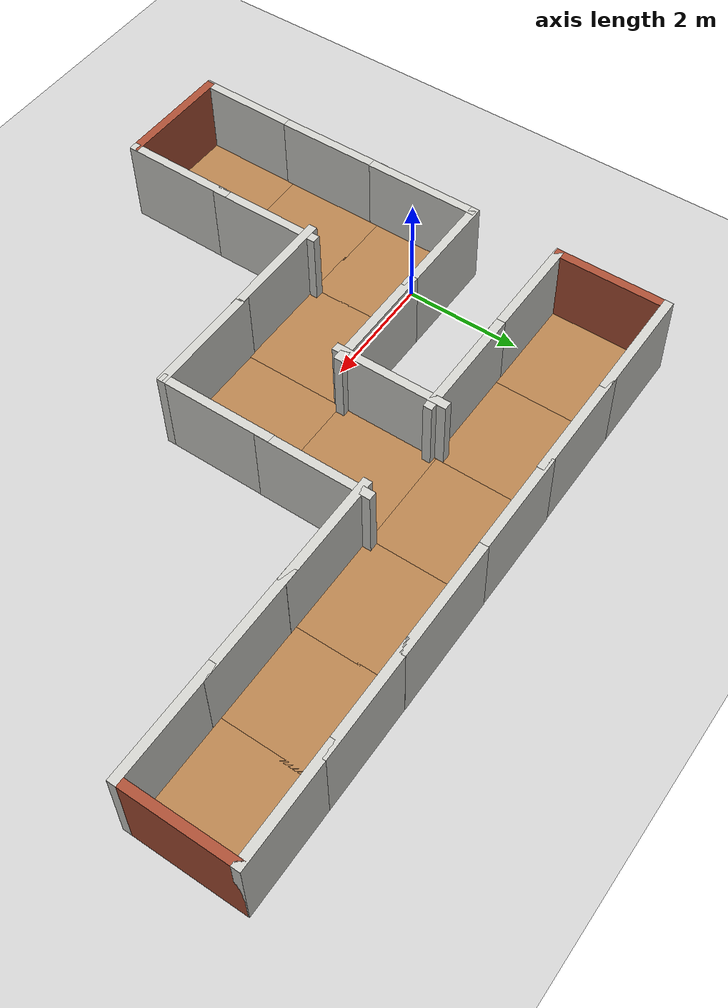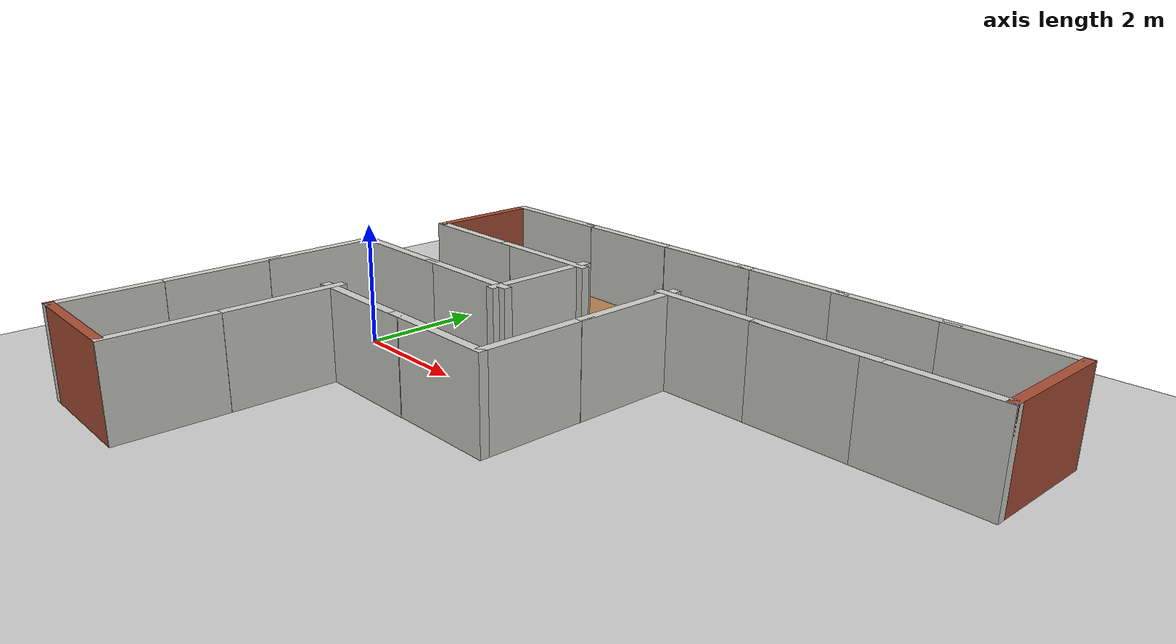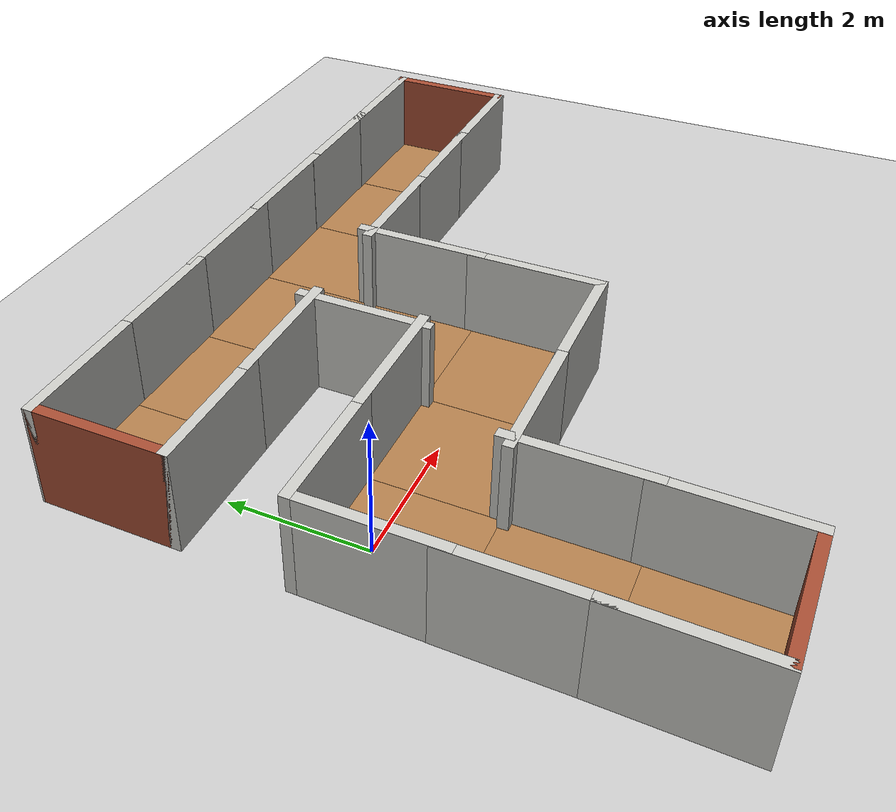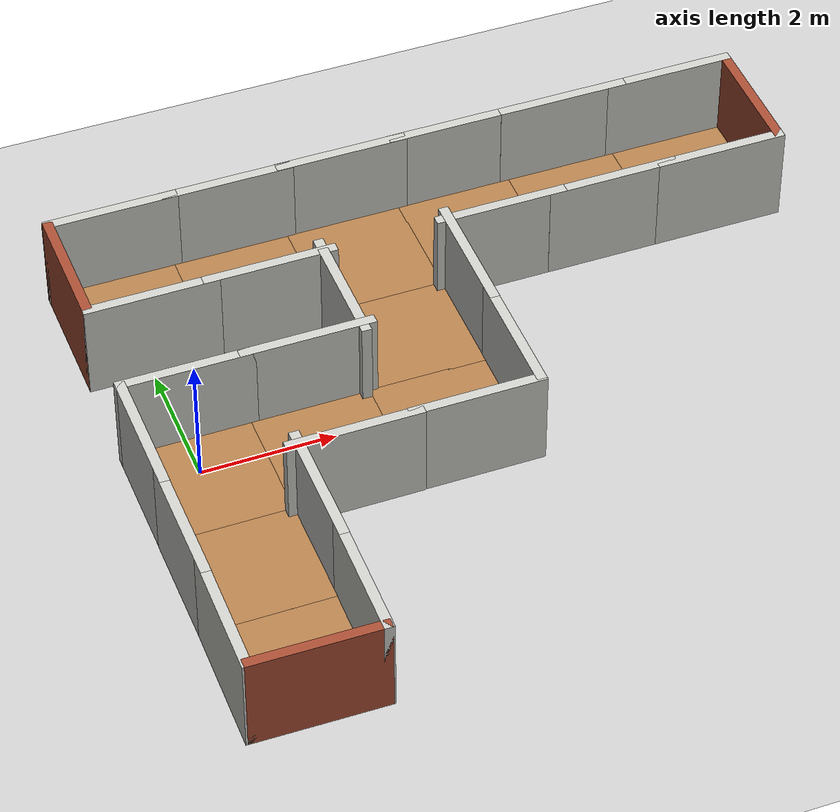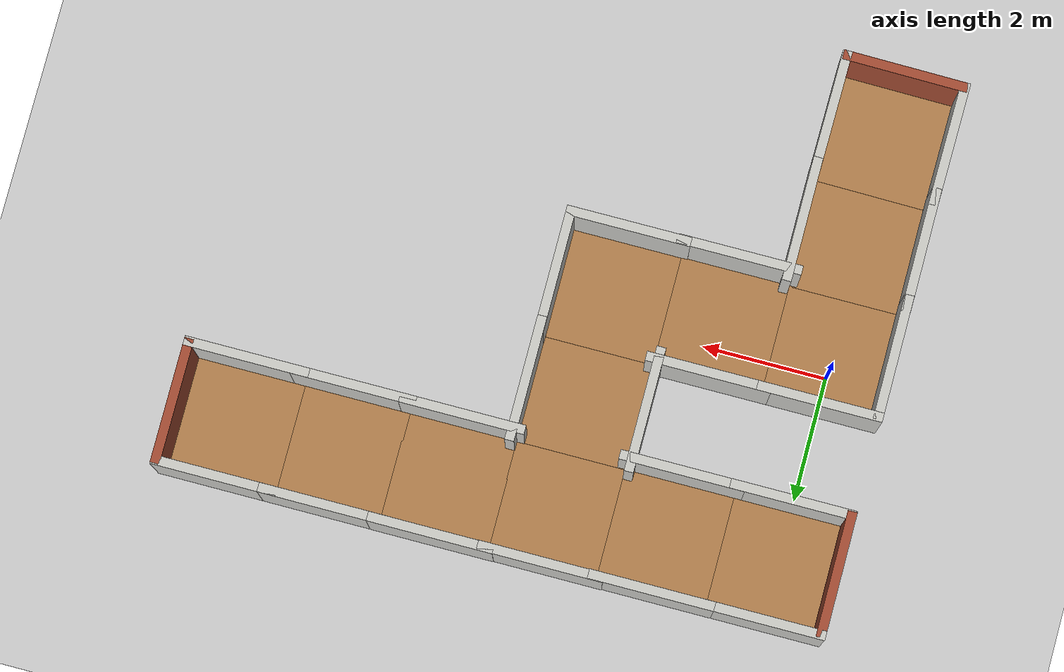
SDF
<sdf version="1.6">
 <world name="default">
  <light name="sun" type="directional">
   <pose>0 0 10 0 -0 0</pose>
   <diffuse>0.8 0.8 0.8 1</diffuse>
   <specular>0.1 0.1 0.1 1</specular>
   <attenuation>
    <range>1000</range>
    <constant>0.9</constant>
    <linear>0.01</linear>
    <quadratic>0.001</quadratic>
   </attenuation>
   <direction>-0.5 0.5 -1</direction>
  </light>
  <model name="ground_plane">
   <static>1</static>
   <link name="link">
    <collision name="collision">
     <geometry><plane><normal>0 0 1</normal><size>100 100</size></plane></geometry>
     <surface><friction><ode><mu>100</mu><mu2>50</mu2></ode></friction></surface>
    </collision>
    <visual name="visual">
     <cast_shadows>0</cast_shadows>
     <geometry><plane><normal>0 0 1</normal><size>100 100</size></plane></geometry>
     <material>
      <script><uri>file://media/materials/scripts/gazebo.material</uri><name>Gazebo/Grey</name></script>
     </material>
    </visual>
   </link>
  </model>
  <gravity>0 0 -9.8</gravity>
  <magnetic_field>6e-06 2.3e-05 -4.2e-05</magnetic_field>
  <atmosphere type="adiabatic"/>
  <physics name="default_physics" default="0" type="ode">
   <max_step_size>0.001</max_step_size>
   <real_time_factor>1</real_time_factor>
   <real_time_update_rate>1000</real_time_update_rate>
  </physics>
  <scene><ambient>0.4 0.4 0.4 1</ambient><background>0.7 0.7 0.7 1</background><shadows>1</shadows></scene>
  <spherical_coordinates>
   <surface_model>EARTH_WGS84</surface_model>
   <latitude_deg>0</latitude_deg>
   <longitude_deg>0</longitude_deg>
   <elevation>0</elevation>
   <heading_deg>0</heading_deg>
  </spherical_coordinates>
  <model name="nervemaze_end">
   <pose>0.042896 -3.86105 0 0 -0 3.12891</pose>
   <link name="Wall_0">
    <collision name="Wall_0_Collision">
     <geometry><box><size>1.76 1.75 0.2</size></box></geometry>
     <pose>0 0 0.1 0 -0 0</pose>
    </collision>
    <visual name="Wall_0_Visual">
     <pose>0 0 0.1 0 -0 0</pose>
     <geometry><box><size>1.76 1.75 0.2</size></box></geometry>
     <material>
      <script><uri>file://media/materials/scripts/gazebo.material</uri><name>Gazebo/Wood</name></script>
      <ambient>1 0.764706 0.305882 1</ambient>
     </material>
    </visual>
    <pose>0.002 -0.003 0 0 0 -1.5708</pose>
   </link>
   <link name="Wall_2">
    <collision name="Wall_2_Collision">
     <geometry><box><size>2 0.15 1.5</size></box></geometry>
     <pose>0 0 0.75 0 -0 0</pose>
    </collision>
    <visual name="Wall_2_Visual">
     <pose>0 0 0.75 0 -0 0</pose>
     <geometry><box><size>2 0.15 1.5</size></box></geometry>
     <material>
      <script><uri>file://media/materials/scripts/gazebo.material</uri><name>Gazebo/CeilingTiled</name></script>
      <ambient>1 0.764706 0.305882 1</ambient>
     </material>
    </visual>
    <pose>0.95 0 0 0 0 -1.5708</pose>
   </link>
   <link name="Wall_4">
    <collision name="Wall_4_Collision">
     <geometry><box><size>2 0.15 1.5</size></box></geometry>
     <pose>0 0 0.75 0 -0 0</pose>
    </collision>
    <visual name="Wall_4_Visual">
     <pose>0 0 0.75 0 -0 0</pose>
     <geometry><box><size>2 0.15 1.5</size></box></geometry>
     <material>
      <script><uri>file://media/materials/scripts/gazebo.material</uri><name>Gazebo/CeilingTiled</name></script>
      <ambient>1 0.764706 0.305882 1</ambient>
     </material>
    </visual>
    <pose>-0.95 0 0 0 0 -1.5708</pose>
   </link>
   <link name="Wall_6">
    <collision name="Wall_6_Collision">
     <geometry><box><size>2 0.15 1.5</size></box></geometry>
     <pose>0 0 0.75 0 -0 0</pose>
    </collision>
    <visual name="Wall_6_Visual">
     <pose>0 0 0.75 0 -0 0</pose>
     <geometry><box><size>2 0.15 1.5</size></box></geometry>
     <material>
      <script><uri>file://media/materials/scripts/gazebo.material</uri><name>Gazebo/Bricks</name></script>
      <ambient>0.996078 0.47451 0.0196078 1</ambient>
     </material>
    </visual>
    <pose>-0.005 0.925 0 0 -0 0</pose>
   </link>
   <static>1</static>
  </model>
  <model name="nervemaze_straight">
   <pose>0.05654 -2.12342 0 0 -0 0</pose>
   <link name="Wall_0">
    <collision name="Wall_0_Collision">
     <geometry><box><size>1.76 1.75 0.2</size></box></geometry>
     <pose>0 0 0.1 0 -0 0</pose>
    </collision>
    <visual name="Wall_0_Visual">
     <pose>0 0 0.1 0 -0 0</pose>
     <geometry><box><size>1.76 1.75 0.2</size></box></geometry>
     <material>
      <script><uri>file://media/materials/scripts/gazebo.material</uri><name>Gazebo/Wood</name></script>
      <ambient>1 0.764706 0.305882 1</ambient>
     </material>
    </visual>
    <pose>0.002 -0.003 0 0 0 -1.5708</pose>
   </link>
   <link name="Wall_2">
    <collision name="Wall_2_Collision">
     <geometry><box><size>2 0.15 1.5</size></box></geometry>
     <pose>0 0 0.75 0 -0 0</pose>
    </collision>
    <visual name="Wall_2_Visual">
     <pose>0 0 0.75 0 -0 0</pose>
     <geometry><box><size>2 0.15 1.5</size></box></geometry>
     <material>
      <script><uri>file://media/materials/scripts/gazebo.material</uri><name>Gazebo/CeilingTiled</name></script>
      <ambient>1 0.764706 0.305882 1</ambient>
     </material>
    </visual>
    <pose>0.95 0 0 0 0 -1.5708</pose>
   </link>
   <link name="Wall_4">
    <collision name="Wall_4_Collision">
     <geometry><box><size>2 0.15 1.5</size></box></geometry>
     <pose>0 0 0.75 0 -0 0</pose>
    </collision>
    <visual name="Wall_4_Visual">
     <pose>0 0 0.75 0 -0 0</pose>
     <geometry><box><size>2 0.15 1.5</size></box></geometry>
     <material>
      <script><uri>file://media/materials/scripts/gazebo.material</uri><name>Gazebo/CeilingTiled</name></script>
      <ambient>1 0.764706 0.305882 1</ambient>
     </material>
    </visual>
    <pose>-0.95 0 0 0 0 -1.5708</pose>
   </link>
   <static>1</static>
  </model>
  <model name="nervemaze_corner">
   <pose>0.035574 -0.37686 0 0 -0 0</pose>
   <link name="Wall_0">
    <collision name="Wall_0_Collision">
     <geometry><box><size>1.76 1.75 0.2</size></box></geometry>
     <pose>0 0 0.1 0 -0 0</pose>
    </collision>
    <visual name="Wall_0_Visual">
     <pose>0 0 0.1 0 -0 0</pose>
     <geometry><box><size>1.76 1.75 0.2</size></box></geometry>
     <material>
      <script><uri>file://media/materials/scripts/gazebo.material</uri><name>Gazebo/Wood</name></script>
      <ambient>1 0.764706 0.305882 1</ambient>
     </material>
    </visual>
    <pose>0.027 -0.018 0 0 0 -1.5708</pose>
   </link>
   <link name="Wall_4">
    <collision name="Wall_4_Collision">
     <geometry><box><size>2 0.15 1.5</size></box></geometry>
     <pose>0 0 0.75 0 -0 0</pose>
    </collision>
    <visual name="Wall_4_Visual">
     <pose>0 0 0.75 0 -0 0</pose>
     <geometry><box><size>2 0.15 1.5</size></box></geometry>
     <material>
      <script><uri>file://media/materials/scripts/gazebo.material</uri><name>Gazebo/CeilingTiled</name></script>
      <ambient>1 0.764706 0.305882 1</ambient>
     </material>
    </visual>
    <pose>-0.925 -0.015 0 0 0 -1.5708</pose>
   </link>
   <link name="Wall_6">
    <collision name="Wall_6_Collision">
     <geometry><box><size>2 0.15 1.5</size></box></geometry>
     <pose>0 0 0.75 0 -0 0</pose>
    </collision>
    <visual name="Wall_6_Visual">
     <pose>0 0 0.75 0 -0 0</pose>
     <geometry><box><size>2 0.15 1.5</size></box></geometry>
     <material>
      <script><uri>file://media/materials/scripts/gazebo.material</uri><name>Gazebo/CeilingTiled</name></script>
      <ambient>1 0.764706 0.305882 1</ambient>
     </material>
    </visual>
    <pose>0 0.94 0 0 -0 0</pose>
   </link>
   <static>1</static>
  </model>
  <model name="nervemaze_straight_0">
   <pose>1.80661 -0.386865 0 0 0 -1.5708</pose>
   <link name="Wall_0">
    <collision name="Wall_0_Collision">
     <geometry><box><size>1.76 1.75 0.2</size></box></geometry>
     <pose>0 0 0.1 0 -0 0</pose>
    </collision>
    <visual name="Wall_0_Visual">
     <pose>0 0 0.1 0 -0 0</pose>
     <geometry><box><size>1.76 1.75 0.2</size></box></geometry>
     <material>
      <script><uri>file://media/materials/scripts/gazebo.material</uri><name>Gazebo/Wood</name></script>
      <ambient>1 0.764706 0.305882 1</ambient>
     </material>
    </visual>
    <pose>0.002 -0.003 0 0 0 -1.5708</pose>
   </link>
   <link name="Wall_2">
    <collision name="Wall_2_Collision">
     <geometry><box><size>2 0.15 1.5</size></box></geometry>
     <pose>0 0 0.75 0 -0 0</pose>
    </collision>
    <visual name="Wall_2_Visual">
     <pose>0 0 0.75 0 -0 0</pose>
     <geometry><box><size>2 0.15 1.5</size></box></geometry>
     <material>
      <script><uri>file://media/materials/scripts/gazebo.material</uri><name>Gazebo/CeilingTiled</name></script>
      <ambient>1 0.764706 0.305882 1</ambient>
     </material>
    </visual>
    <pose>0.95 0 0 0 0 -1.5708</pose>
   </link>
   <link name="Wall_4">
    <collision name="Wall_4_Collision">
     <geometry><box><size>2 0.15 1.5</size></box></geometry>
     <pose>0 0 0.75 0 -0 0</pose>
    </collision>
    <visual name="Wall_4_Visual">
     <pose>0 0 0.75 0 -0 0</pose>
     <geometry><box><size>2 0.15 1.5</size></box></geometry>
     <material>
      <script><uri>file://media/materials/scripts/gazebo.material</uri><name>Gazebo/CeilingTiled</name></script>
      <ambient>1 0.764706 0.305882 1</ambient>
     </material>
    </visual>
    <pose>-0.95 0 0 0 0 -1.5708</pose>
   </link>
   <static>1</static>
  </model>
  <model name="nervemaze_corner_1">
   <pose>3.58197 -0.388247 0 0 -0 3.14159</pose>
   <link name="Wall_0">
    <collision name="Wall_0_Collision">
     <geometry><box><size>1.76 1.75 0.2</size></box></geometry>
     <pose>0 0 0.1 0 -0 0</pose>
    </collision>
    <visual name="Wall_0_Visual">
     <pose>0 0 0.1 0 -0 0</pose>
     <geometry><box><size>1.76 1.75 0.2</size></box></geometry>
     <material>
      <script><uri>file://media/materials/scripts/gazebo.material</uri><name>Gazebo/Wood</name></script>
      <ambient>1 0.764706 0.305882 1</ambient>
     </material>
    </visual>
    <pose>0.027 -0.018 0 0 0 -1.5708</pose>
   </link>
   <link name="Wall_4">
    <collision name="Wall_4_Collision">
     <geometry><box><size>2 0.15 1.5</size></box></geometry>
     <pose>0 0 0.75 0 -0 0</pose>
    </collision>
    <visual name="Wall_4_Visual">
     <pose>0 0 0.75 0 -0 0</pose>
     <geometry><box><size>2 0.15 1.5</size></box></geometry>
     <material>
      <script><uri>file://media/materials/scripts/gazebo.material</uri><name>Gazebo/CeilingTiled</name></script>
      <ambient>1 0.764706 0.305882 1</ambient>
     </material>
    </visual>
    <pose>-0.925 -0.015 0 0 0 -1.5708</pose>
   </link>
   <link name="Wall_6">
    <collision name="Wall_6_Collision">
     <geometry><box><size>2 0.15 1.5</size></box></geometry>
     <pose>0 0 0.75 0 -0 0</pose>
    </collision>
    <visual name="Wall_6_Visual">
     <pose>0 0 0.75 0 -0 0</pose>
     <geometry><box><size>2 0.15 1.5</size></box></geometry>
     <material>
      <script><uri>file://media/materials/scripts/gazebo.material</uri><name>Gazebo/CeilingTiled</name></script>
      <ambient>1 0.764706 0.305882 1</ambient>
     </material>
    </visual>
    <pose>0 0.94 0 0 -0 0</pose>
   </link>
   <static>1</static>
  </model>
  <model name="nervemaze_straight_3">
   <pose>3.56023 1.37158 0 0 -0 0</pose>
   <link name="Wall_0">
    <collision name="Wall_0_Collision">
     <geometry><box><size>1.76 1.75 0.2</size></box></geometry>
     <pose>0 0 0.1 0 -0 0</pose>
    </collision>
    <visual name="Wall_0_Visual">
     <pose>0 0 0.1 0 -0 0</pose>
     <geometry><box><size>1.76 1.75 0.2</size></box></geometry>
     <material>
      <script><uri>file://media/materials/scripts/gazebo.material</uri><name>Gazebo/Wood</name></script>
      <ambient>1 0.764706 0.305882 1</ambient>
     </material>
    </visual>
    <pose>0.002 -0.003 0 0 0 -1.5708</pose>
   </link>
   <link name="Wall_2">
    <collision name="Wall_2_Collision">
     <geometry><box><size>2 0.15 1.5</size></box></geometry>
     <pose>0 0 0.75 0 -0 0</pose>
    </collision>
    <visual name="Wall_2_Visual">
     <pose>0 0 0.75 0 -0 0</pose>
     <geometry><box><size>2 0.15 1.5</size></box></geometry>
     <material>
      <script><uri>file://media/materials/scripts/gazebo.material</uri><name>Gazebo/CeilingTiled</name></script>
      <ambient>1 0.764706 0.305882 1</ambient>
     </material>
    </visual>
    <pose>0.95 0 0 0 0 -1.5708</pose>
   </link>
   <link name="Wall_4">
    <collision name="Wall_4_Collision">
     <geometry><box><size>2 0.15 1.5</size></box></geometry>
     <pose>0 0 0.75 0 -0 0</pose>
    </collision>
    <visual name="Wall_4_Visual">
     <pose>0 0 0.75 0 -0 0</pose>
     <geometry><box><size>2 0.15 1.5</size></box></geometry>
     <material>
      <script><uri>file://media/materials/scripts/gazebo.material</uri><name>Gazebo/CeilingTiled</name></script>
      <ambient>1 0.764706 0.305882 1</ambient>
     </material>
    </visual>
    <pose>-0.95 0 0 0 0 -1.5708</pose>
   </link>
   <static>1</static>
  </model>
  <model name="nervemaze_onewall">
   <link name="Wall_0">
    <pose>0.002 -0.003 0 0 0 -1.5708</pose>
    <visual name="Wall_0_Visual">
     <pose>0 0 0.1 0 -0 0</pose>
     <geometry><box><size>1.76 1.75 0.2</size></box></geometry>
     <material>
      <script><uri>file://media/materials/scripts/gazebo.material</uri><name>Gazebo/Wood</name></script>
      <ambient>1 0.764706 0.305882 1</ambient>
      <diffuse>1 1 1 1</diffuse>
      <specular>0.2 0.2 0.2 1</specular>
      <emissive>0 0 0 1</emissive>
     </material>
    </visual>
    <collision name="Wall_0_Collision">
     <pose>0 0 0.1 0 -0 0</pose>
     <geometry><box><size>1.76 1.75 0.2</size></box></geometry>
     <surface>
      <friction>
       <ode><mu>1</mu><mu2>1</mu2><fdir1>0 0 0</fdir1><slip1>0</slip1><slip2>0</slip2></ode>
       <torsional>
        <coefficient>1</coefficient>
        <patch_radius>0</patch_radius>
        <surface_radius>0</surface_radius>
        <use_patch_radius>1</use_patch_radius>
        <ode><slip>0</slip></ode>
       </torsional>
      </friction>
      <bounce><restitution_coefficient>0</restitution_coefficient><threshold>1e+06</threshold></bounce>
      <contact>
       <collide_without_contact>0</collide_without_contact>
       <collide_without_contact_bitmask>1</collide_without_contact_bitmask>
       <collide_bitmask>1</collide_bitmask>
       <ode>
        <soft_cfm>0</soft_cfm>
        <soft_erp>0.2</soft_erp>
        <kp>1e+13</kp>
        <kd>1</kd>
        <max_vel>0.01</max_vel>
        <min_depth>0</min_depth>
       </ode>
       <bullet>
        <split_impulse>1</split_impulse>
        <split_impulse_penetration_threshold>-0.01</split_impulse_penetration_threshold>
        <soft_cfm>0</soft_cfm>
        <soft_erp>0.2</soft_erp>
        <kp>1e+13</kp>
        <kd>1</kd>
       </bullet>
      </contact>
     </surface>
    </collision>
   </link>
   <link name="Wall_4">
    <pose>-0.95 0 0 0 0 -1.5708</pose>
    <visual name="Wall_4_Visual">
     <pose>0 0 0.75 0 -0 0</pose>
     <geometry><box><size>2 0.15 1.5</size></box></geometry>
     <material>
      <script><uri>file://media/materials/scripts/gazebo.material</uri><name>Gazebo/CeilingTiled</name></script>
      <ambient>1 0.764706 0.305882 1</ambient>
      <diffuse>1 1 1 1</diffuse>
      <specular>0 0 0 1</specular>
      <emissive>0 0 0 1</emissive>
     </material>
    </visual>
    <collision name="Wall_4_Collision">
     <pose>0 0 0.75 0 -0 0</pose>
     <geometry><box><size>2 0.15 1.5</size></box></geometry>
     <surface>
      <friction>
       <ode><mu>1</mu><mu2>1</mu2><fdir1>0 0 0</fdir1><slip1>0</slip1><slip2>0</slip2></ode>
       <torsional>
        <coefficient>1</coefficient>
        <patch_radius>0</patch_radius>
        <surface_radius>0</surface_radius>
        <use_patch_radius>1</use_patch_radius>
        <ode><slip>0</slip></ode>
       </torsional>
      </friction>
      <bounce><restitution_coefficient>0</restitution_coefficient><threshold>1e+06</threshold></bounce>
      <contact>
       <collide_without_contact>0</collide_without_contact>
       <collide_without_contact_bitmask>1</collide_without_contact_bitmask>
       <collide_bitmask>1</collide_bitmask>
       <ode>
        <soft_cfm>0</soft_cfm>
        <soft_erp>0.2</soft_erp>
        <kp>1e+13</kp>
        <kd>1</kd>
        <max_vel>0.01</max_vel>
        <min_depth>0</min_depth>
       </ode>
       <bullet>
        <split_impulse>1</split_impulse>
        <split_impulse_penetration_threshold>-0.01</split_impulse_penetration_threshold>
        <soft_cfm>0</soft_cfm>
        <soft_erp>0.2</soft_erp>
        <kp>1e+13</kp>
        <kd>1</kd>
       </bullet>
      </contact>
     </surface>
    </collision>
   </link>
   <static>1</static>
   <pose>3.5661 3.09958 0 0 0 -1.5708</pose>
  </model>
  <model name="nervemaze_straight_4">
   <pose>1.8104 3.09146 0 0 0 -1.5708</pose>
   <link name="Wall_0">
    <collision name="Wall_0_Collision">
     <geometry><box><size>1.76 1.75 0.2</size></box></geometry>
     <pose>0 0 0.1 0 -0 0</pose>
    </collision>
    <visual name="Wall_0_Visual">
     <pose>0 0 0.1 0 -0 0</pose>
     <geometry><box><size>1.76 1.75 0.2</size></box></geometry>
     <material>
      <script><uri>file://media/materials/scripts/gazebo.material</uri><name>Gazebo/Wood</name></script>
      <ambient>1 0.764706 0.305882 1</ambient>
     </material>
    </visual>
    <pose>0.002 -0.003 0 0 0 -1.5708</pose>
   </link>
   <link name="Wall_2">
    <collision name="Wall_2_Collision">
     <geometry><box><size>2 0.15 1.5</size></box></geometry>
     <pose>0 0 0.75 0 -0 0</pose>
    </collision>
    <visual name="Wall_2_Visual">
     <pose>0 0 0.75 0 -0 0</pose>
     <geometry><box><size>2 0.15 1.5</size></box></geometry>
     <material>
      <script><uri>file://media/materials/scripts/gazebo.material</uri><name>Gazebo/CeilingTiled</name></script>
      <ambient>1 0.764706 0.305882 1</ambient>
     </material>
    </visual>
    <pose>0.95 0 0 0 0 -1.5708</pose>
   </link>
   <link name="Wall_4">
    <collision name="Wall_4_Collision">
     <geometry><box><size>2 0.15 1.5</size></box></geometry>
     <pose>0 0 0.75 0 -0 0</pose>
    </collision>
    <visual name="Wall_4_Visual">
     <pose>0 0 0.75 0 -0 0</pose>
     <geometry><box><size>2 0.15 1.5</size></box></geometry>
     <material>
      <script><uri>file://media/materials/scripts/gazebo.material</uri><name>Gazebo/CeilingTiled</name></script>
      <ambient>1 0.764706 0.305882 1</ambient>
     </material>
    </visual>
    <pose>-0.95 0 0 0 0 -1.5708</pose>
   </link>
   <static>1</static>
  </model>
  <model name="nervemaze_straight_5">
   <pose>5.31349 3.10496 0 0 0 -1.5708</pose>
   <link name="Wall_0">
    <collision name="Wall_0_Collision">
     <geometry><box><size>1.76 1.75 0.2</size></box></geometry>
     <pose>0 0 0.1 0 -0 0</pose>
    </collision>
    <visual name="Wall_0_Visual">
     <pose>0 0 0.1 0 -0 0</pose>
     <geometry><box><size>1.76 1.75 0.2</size></box></geometry>
     <material>
      <script><uri>file://media/materials/scripts/gazebo.material</uri><name>Gazebo/Wood</name></script>
      <ambient>1 0.764706 0.305882 1</ambient>
     </material>
    </visual>
    <pose>0.002 -0.003 0 0 0 -1.5708</pose>
   </link>
   <link name="Wall_2">
    <collision name="Wall_2_Collision">
     <geometry><box><size>2 0.15 1.5</size></box></geometry>
     <pose>0 0 0.75 0 -0 0</pose>
    </collision>
    <visual name="Wall_2_Visual">
     <pose>0 0 0.75 0 -0 0</pose>
     <geometry><box><size>2 0.15 1.5</size></box></geometry>
     <material>
      <script><uri>file://media/materials/scripts/gazebo.material</uri><name>Gazebo/CeilingTiled</name></script>
      <ambient>1 0.764706 0.305882 1</ambient>
     </material>
    </visual>
    <pose>0.95 0 0 0 0 -1.5708</pose>
   </link>
   <link name="Wall_4">
    <collision name="Wall_4_Collision">
     <geometry><box><size>2 0.15 1.5</size></box></geometry>
     <pose>0 0 0.75 0 -0 0</pose>
    </collision>
    <visual name="Wall_4_Visual">
     <pose>0 0 0.75 0 -0 0</pose>
     <geometry><box><size>2 0.15 1.5</size></box></geometry>
     <material>
      <script><uri>file://media/materials/scripts/gazebo.material</uri><name>Gazebo/CeilingTiled</name></script>
      <ambient>1 0.764706 0.305882 1</ambient>
     </material>
    </visual>
    <pose>-0.95 0 0 0 0 -1.5708</pose>
   </link>
   <static>1</static>
  </model>
  <model name="nervemaze_straight_6">
   <pose>7.05194 3.10323 0 0 0 -1.5708</pose>
   <link name="Wall_0">
    <collision name="Wall_0_Collision">
     <geometry><box><size>1.76 1.75 0.2</size></box></geometry>
     <pose>0 0 0.1 0 -0 0</pose>
    </collision>
    <visual name="Wall_0_Visual">
     <pose>0 0 0.1 0 -0 0</pose>
     <geometry><box><size>1.76 1.75 0.2</size></box></geometry>
     <material>
      <script><uri>file://media/materials/scripts/gazebo.material</uri><name>Gazebo/Wood</name></script>
      <ambient>1 0.764706 0.305882 1</ambient>
     </material>
    </visual>
    <pose>0.002 -0.003 0 0 0 -1.5708</pose>
   </link>
   <link name="Wall_2">
    <collision name="Wall_2_Collision">
     <geometry><box><size>2 0.15 1.5</size></box></geometry>
     <pose>0 0 0.75 0 -0 0</pose>
    </collision>
    <visual name="Wall_2_Visual">
     <pose>0 0 0.75 0 -0 0</pose>
     <geometry><box><size>2 0.15 1.5</size></box></geometry>
     <material>
      <script><uri>file://media/materials/scripts/gazebo.material</uri><name>Gazebo/CeilingTiled</name></script>
      <ambient>1 0.764706 0.305882 1</ambient>
     </material>
    </visual>
    <pose>0.95 0 0 0 0 -1.5708</pose>
   </link>
   <link name="Wall_4">
    <collision name="Wall_4_Collision">
     <geometry><box><size>2 0.15 1.5</size></box></geometry>
     <pose>0 0 0.75 0 -0 0</pose>
    </collision>
    <visual name="Wall_4_Visual">
     <pose>0 0 0.75 0 -0 0</pose>
     <geometry><box><size>2 0.15 1.5</size></box></geometry>
     <material>
      <script><uri>file://media/materials/scripts/gazebo.material</uri><name>Gazebo/CeilingTiled</name></script>
      <ambient>1 0.764706 0.305882 1</ambient>
     </material>
    </visual>
    <pose>-0.95 0 0 0 0 -1.5708</pose>
   </link>
   <static>1</static>
  </model>
  <model name="nervemaze_end_0">
   <pose>0.054889 3.08982 0 0 -0 1.5708</pose>
   <link name="Wall_0">
    <collision name="Wall_0_Collision">
     <geometry><box><size>1.76 1.75 0.2</size></box></geometry>
     <pose>0 0 0.1 0 -0 0</pose>
    </collision>
    <visual name="Wall_0_Visual">
     <pose>0 0 0.1 0 -0 0</pose>
     <geometry><box><size>1.76 1.75 0.2</size></box></geometry>
     <material>
      <script><uri>file://media/materials/scripts/gazebo.material</uri><name>Gazebo/Wood</name></script>
      <ambient>1 0.764706 0.305882 1</ambient>
     </material>
    </visual>
    <pose>0.002 -0.003 0 0 0 -1.5708</pose>
   </link>
   <link name="Wall_2">
    <collision name="Wall_2_Collision">
     <geometry><box><size>2 0.15 1.5</size></box></geometry>
     <pose>0 0 0.75 0 -0 0</pose>
    </collision>
    <visual name="Wall_2_Visual">
     <pose>0 0 0.75 0 -0 0</pose>
     <geometry><box><size>2 0.15 1.5</size></box></geometry>
     <material>
      <script><uri>file://media/materials/scripts/gazebo.material</uri><name>Gazebo/CeilingTiled</name></script>
      <ambient>1 0.764706 0.305882 1</ambient>
     </material>
    </visual>
    <pose>0.95 0 0 0 0 -1.5708</pose>
   </link>
   <link name="Wall_4">
    <collision name="Wall_4_Collision">
     <geometry><box><size>2 0.15 1.5</size></box></geometry>
     <pose>0 0 0.75 0 -0 0</pose>
    </collision>
    <visual name="Wall_4_Visual">
     <pose>0 0 0.75 0 -0 0</pose>
     <geometry><box><size>2 0.15 1.5</size></box></geometry>
     <material>
      <script><uri>file://media/materials/scripts/gazebo.material</uri><name>Gazebo/CeilingTiled</name></script>
      <ambient>1 0.764706 0.305882 1</ambient>
     </material>
    </visual>
    <pose>-0.95 0 0 0 0 -1.5708</pose>
   </link>
   <link name="Wall_6">
    <collision name="Wall_6_Collision">
     <geometry><box><size>2 0.15 1.5</size></box></geometry>
     <pose>0 0 0.75 0 -0 0</pose>
    </collision>
    <visual name="Wall_6_Visual">
     <pose>0 0 0.75 0 -0 0</pose>
     <geometry><box><size>2 0.15 1.5</size></box></geometry>
     <material>
      <script><uri>file://media/materials/scripts/gazebo.material</uri><name>Gazebo/Bricks</name></script>
      <ambient>0.996078 0.47451 0.0196078 1</ambient>
     </material>
    </visual>
    <pose>-0.005 0.925 0 0 -0 0</pose>
   </link>
   <static>1</static>
  </model>
  <model name="nervemaze_end_1">
   <pose>8.75854 3.10298 0 0 0 -1.5708</pose>
   <link name="Wall_0">
    <collision name="Wall_0_Collision">
     <geometry><box><size>1.76 1.75 0.2</size></box></geometry>
     <pose>0 0 0.1 0 -0 0</pose>
    </collision>
    <visual name="Wall_0_Visual">
     <pose>0 0 0.1 0 -0 0</pose>
     <geometry><box><size>1.76 1.75 0.2</size></box></geometry>
     <material>
      <script><uri>file://media/materials/scripts/gazebo.material</uri><name>Gazebo/Wood</name></script>
      <ambient>1 0.764706 0.305882 1</ambient>
     </material>
    </visual>
    <pose>0.002 -0.003 0 0 0 -1.5708</pose>
   </link>
   <link name="Wall_2">
    <collision name="Wall_2_Collision">
     <geometry><box><size>2 0.15 1.5</size></box></geometry>
     <pose>0 0 0.75 0 -0 0</pose>
    </collision>
    <visual name="Wall_2_Visual">
     <pose>0 0 0.75 0 -0 0</pose>
     <geometry><box><size>2 0.15 1.5</size></box></geometry>
     <material>
      <script><uri>file://media/materials/scripts/gazebo.material</uri><name>Gazebo/CeilingTiled</name></script>
      <ambient>1 0.764706 0.305882 1</ambient>
     </material>
    </visual>
    <pose>0.95 0 0 0 0 -1.5708</pose>
   </link>
   <link name="Wall_4">
    <collision name="Wall_4_Collision">
     <geometry><box><size>2 0.15 1.5</size></box></geometry>
     <pose>0 0 0.75 0 -0 0</pose>
    </collision>
    <visual name="Wall_4_Visual">
     <pose>0 0 0.75 0 -0 0</pose>
     <geometry><box><size>2 0.15 1.5</size></box></geometry>
     <material>
      <script><uri>file://media/materials/scripts/gazebo.material</uri><name>Gazebo/CeilingTiled</name></script>
      <ambient>1 0.764706 0.305882 1</ambient>
     </material>
    </visual>
    <pose>-0.95 0 0 0 0 -1.5708</pose>
   </link>
   <link name="Wall_6">
    <collision name="Wall_6_Collision">
     <geometry><box><size>2 0.15 1.5</size></box></geometry>
     <pose>0 0 0.75 0 -0 0</pose>
    </collision>
    <visual name="Wall_6_Visual">
     <pose>0 0 0.75 0 -0 0</pose>
     <geometry><box><size>2 0.15 1.5</size></box></geometry>
     <material>
      <script><uri>file://media/materials/scripts/gazebo.material</uri><name>Gazebo/Bricks</name></script>
      <ambient>0.996078 0.47451 0.0196078 1</ambient>
     </material>
    </visual>
    <pose>-0.005 0.925 0 0 -0 0</pose>
   </link>
   <static>1</static>
  </model>
 </world>
</sdf>
